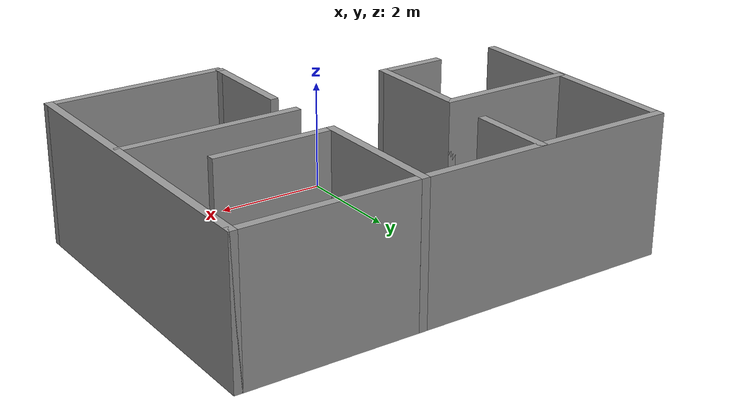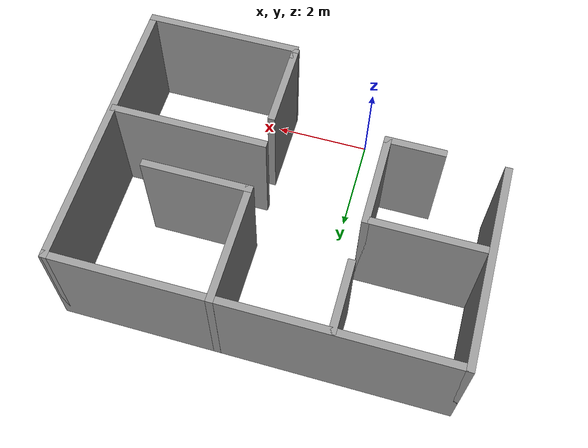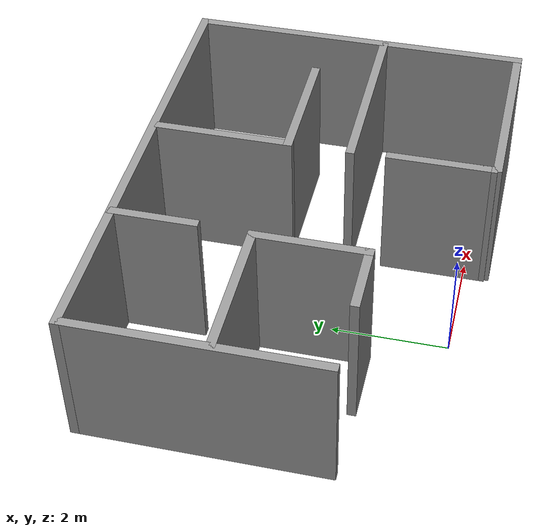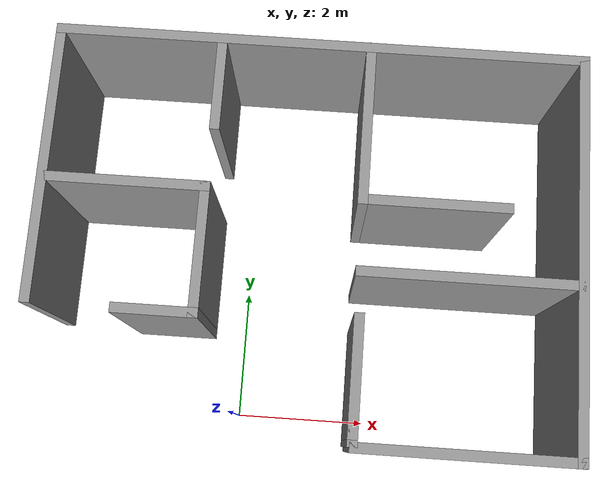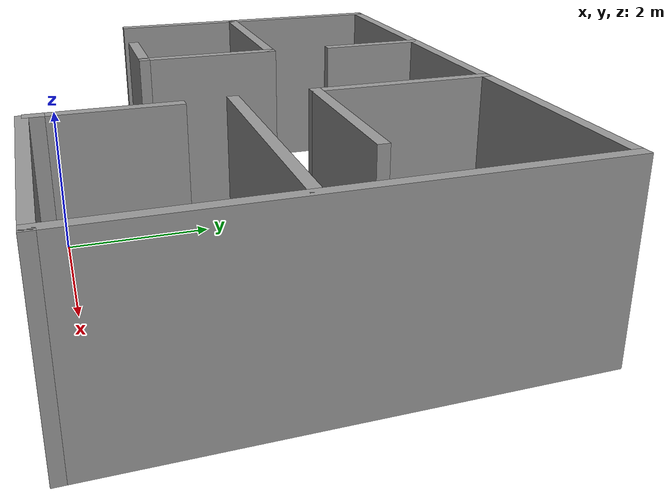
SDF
<sdf version="1.7">
 <world name="default">
  <gravity>0 0 -9.8</gravity>
  <magnetic_field>6e-06 2.3e-05 -4.2e-05</magnetic_field>
  <atmosphere type="adiabatic"/>
  <physics type="ode">
   <max_step_size>0.001</max_step_size>
   <real_time_factor>1</real_time_factor>
   <real_time_update_rate>1000</real_time_update_rate>
  </physics>
  <scene><ambient>0.4 0.4 0.4 1</ambient><background>0.7 0.7 0.7 1</background><shadows>1</shadows></scene>
  <audio><device>default</device></audio>
  <spherical_coordinates>
   <surface_model>EARTH_WGS84</surface_model>
   <latitude_deg>0</latitude_deg>
   <longitude_deg>0</longitude_deg>
   <elevation>0</elevation>
   <heading_deg>0</heading_deg>
  </spherical_coordinates>
  <model name="room">
   <pose>0.978974 2.94186 0 0 -0 0</pose>
   <link name="Wall_1">
    <collision name="Wall_1_Collision">
     <geometry><box><size>8 0.15 2.5</size></box></geometry>
     <pose>0 0 1.25 0 -0 0</pose>
    </collision>
    <visual name="Wall_1_Visual">
     <pose>0 0 1.25 0 -0 0</pose>
     <geometry><box><size>8 0.15 2.5</size></box></geometry>
     <material>
      <script><uri>file://media/materials/scripts/gazebo.material</uri><name>Gazebo/Grey</name></script>
      <ambient>1 1 1 1</ambient>
     </material>
     <meta><layer>0</layer></meta>
    </visual>
    <pose>0 2.5275 0 0 -0 0</pose>
   </link>
   <link name="Wall_11">
    <collision name="Wall_11_Collision">
     <geometry><box><size>2 0.15 2.5</size></box></geometry>
     <pose>0 0 1.25 0 -0 0</pose>
    </collision>
    <visual name="Wall_11_Visual">
     <pose>0 0 1.25 0 -0 0</pose>
     <geometry><box><size>2 0.15 2.5</size></box></geometry>
     <material>
      <script><uri>file://media/materials/scripts/gazebo.material</uri><name>Gazebo/Grey</name></script>
      <ambient>1 1 1 1</ambient>
     </material>
     <meta><layer>0</layer></meta>
    </visual>
    <pose>-1.54533 -0.708606 0 0 -0 -1.5708</pose>
   </link>
   <link name="Wall_12">
    <collision name="Wall_12_Collision">
     <geometry><box><size>1.25 0.15 2.5</size></box></geometry>
     <pose>0 0 1.25 0 -0 0</pose>
    </collision>
    <visual name="Wall_12_Visual">
     <pose>0 0 1.25 0 -0 0</pose>
     <geometry><box><size>1.25 0.15 2.5</size></box></geometry>
     <material>
      <script><uri>file://media/materials/scripts/gazebo.material</uri><name>Gazebo/Grey</name></script>
      <ambient>1 1 1 1</ambient>
     </material>
     <meta><layer>0</layer></meta>
    </visual>
    <pose>-2.09533 -1.63361 0 0 -0 3.14159</pose>
   </link>
   <link name="Wall_14">
    <collision name="Wall_14_Collision">
     <geometry><box><size>2.5 0.15 2.5</size></box></geometry>
     <pose>0 0 1.25 0 -0 0</pose>
    </collision>
    <visual name="Wall_14_Visual">
     <pose>0 0 1.25 0 -0 0</pose>
     <geometry><box><size>2.5 0.15 2.5</size></box></geometry>
     <material>
      <script><uri>file://media/materials/scripts/gazebo.material</uri><name>Gazebo/Grey</name></script>
      <ambient>1 1 1 1</ambient>
     </material>
     <meta><layer>0</layer></meta>
    </visual>
    <pose>0.743336 1.35312 0 0 -0 -1.5708</pose>
   </link>
   <link name="Wall_15">
    <collision name="Wall_15_Collision">
     <geometry><box><size>2.25 0.15 2.5</size></box></geometry>
     <pose>0 0 1.25 0 -0 0</pose>
    </collision>
    <visual name="Wall_15_Visual">
     <pose>0 0 1.25 0 -0 0</pose>
     <geometry><box><size>2.25 0.15 2.5</size></box></geometry>
     <material>
      <script><uri>file://media/materials/scripts/gazebo.material</uri><name>Gazebo/Grey</name></script>
      <ambient>1 1 1 1</ambient>
     </material>
     <meta><layer>0</layer></meta>
    </visual>
    <pose>1.79334 0.178124 0 0 -0 0</pose>
   </link>
   <link name="Wall_17">
    <collision name="Wall_17_Collision">
     <geometry><box><size>3.25 0.15 2.5</size></box></geometry>
     <pose>0 0 1.25 0 -0 0</pose>
    </collision>
    <visual name="Wall_17_Visual">
     <pose>0 0 1.25 0 -0 0</pose>
     <geometry><box><size>3.25 0.15 2.5</size></box></geometry>
     <material>
      <script><uri>file://media/materials/scripts/gazebo.material</uri><name>Gazebo/Grey</name></script>
      <ambient>1 1 1 1</ambient>
     </material>
     <meta><layer>0</layer></meta>
    </visual>
    <pose>2.32375 -0.878636 0 0 -0 0</pose>
   </link>
   <link name="Wall_19">
    <collision name="Wall_19_Collision">
     <geometry><box><size>1.75 0.15 2.5</size></box></geometry>
     <pose>0 0 1.25 0 -0 0</pose>
    </collision>
    <visual name="Wall_19_Visual">
     <pose>0 0 1.25 0 -0 0</pose>
     <geometry><box><size>1.75 0.15 2.5</size></box></geometry>
     <material>
      <script><uri>file://media/materials/scripts/gazebo.material</uri><name>Gazebo/Grey</name></script>
      <ambient>1 1 1 1</ambient>
     </material>
     <meta><layer>0</layer></meta>
    </visual>
    <pose>0.788962 -2.34782 0 0 -0 -1.5708</pose>
   </link>
   <link name="Wall_2">
    <collision name="Wall_2_Collision">
     <geometry><box><size>6 0.15 2.5</size></box></geometry>
     <pose>0 0 1.25 0 -0 0</pose>
    </collision>
    <visual name="Wall_2_Visual">
     <pose>0 0 1.25 0 -0 0</pose>
     <geometry><box><size>6 0.15 2.5</size></box></geometry>
     <material>
      <script><uri>file://media/materials/scripts/gazebo.material</uri><name>Gazebo/Grey</name></script>
      <ambient>1 1 1 1</ambient>
     </material>
     <meta><layer>0</layer></meta>
    </visual>
    <pose>3.925 -0.3975 0 0 -0 -1.5708</pose>
   </link>
   <link name="Wall_20">
    <collision name="Wall_20_Collision">
     <geometry><box><size>0.25 0.15 2.5</size></box></geometry>
     <pose>0 0 1.25 0 -0 0</pose>
    </collision>
    <visual name="Wall_20_Visual">
     <pose>0 0 1.25 0 -0 0</pose>
     <geometry><box><size>0.25 0.15 2.5</size></box></geometry>
     <material>
      <script><uri>file://media/materials/scripts/gazebo.material</uri><name>Gazebo/Grey</name></script>
      <ambient>1 1 1 1</ambient>
     </material>
     <meta><layer>0</layer></meta>
    </visual>
    <pose>0.788962 -3.19782 0 0 -0 -1.5708</pose>
   </link>
   <link name="Wall_22">
    <collision name="Wall_22_Collision">
     <geometry><box><size>3.25 0.15 2.5</size></box></geometry>
     <pose>0 0 1.25 0 -0 0</pose>
    </collision>
    <visual name="Wall_22_Visual">
     <pose>0 0 1.25 0 -0 0</pose>
     <geometry><box><size>3.25 0.15 2.5</size></box></geometry>
     <material>
      <script><uri>file://media/materials/scripts/gazebo.material</uri><name>Gazebo/Grey</name></script>
      <ambient>1 1 1 1</ambient>
     </material>
     <meta><layer>0</layer></meta>
    </visual>
    <pose>2.375 -3.3225 0 0 -0 3.14159</pose>
   </link>
   <link name="Wall_25">
    <collision name="Wall_25_Collision">
     <geometry><box><size>4.25 0.15 2.5</size></box></geometry>
     <pose>0 0 1.25 0 -0 0</pose>
    </collision>
    <visual name="Wall_25_Visual">
     <pose>0 0 1.25 0 -0 0</pose>
     <geometry><box><size>4.25 0.15 2.5</size></box></geometry>
     <material>
      <script><uri>file://media/materials/scripts/gazebo.material</uri><name>Gazebo/Grey</name></script>
      <ambient>1 1 1 1</ambient>
     </material>
     <meta><layer>0</layer></meta>
    </visual>
    <pose>-3.925 0.4775 0 0 -0 -1.5708</pose>
   </link>
   <link name="Wall_7">
    <collision name="Wall_7_Collision">
     <geometry><box><size>1.5 0.15 2.5</size></box></geometry>
     <pose>0 0 1.25 0 -0 0</pose>
    </collision>
    <visual name="Wall_7_Visual">
     <pose>0 0 1.25 0 -0 0</pose>
     <geometry><box><size>1.5 0.15 2.5</size></box></geometry>
     <material>
      <script><uri>file://media/materials/scripts/gazebo.material</uri><name>Gazebo/Grey</name></script>
      <ambient>1 1 1 1</ambient>
     </material>
     <meta><layer>0</layer></meta>
    </visual>
    <pose>-1.49235 1.83791 0 0 -0 -1.5708</pose>
   </link>
   <link name="Wall_9">
    <collision name="Wall_9_Collision">
     <geometry><box><size>2.5 0.15 2.5</size></box></geometry>
     <pose>0 0 1.25 0 -0 0</pose>
    </collision>
    <visual name="Wall_9_Visual">
     <pose>0 0 1.25 0 -0 0</pose>
     <geometry><box><size>2.5 0.15 2.5</size></box></geometry>
     <material>
      <script><uri>file://media/materials/scripts/gazebo.material</uri><name>Gazebo/Grey</name></script>
      <ambient>1 1 1 1</ambient>
     </material>
     <meta><layer>0</layer></meta>
    </visual>
    <pose>-2.72033 0.216394 0 0 -0 0</pose>
   </link>
   <static>1</static>
  </model>
 </world>
</sdf>
